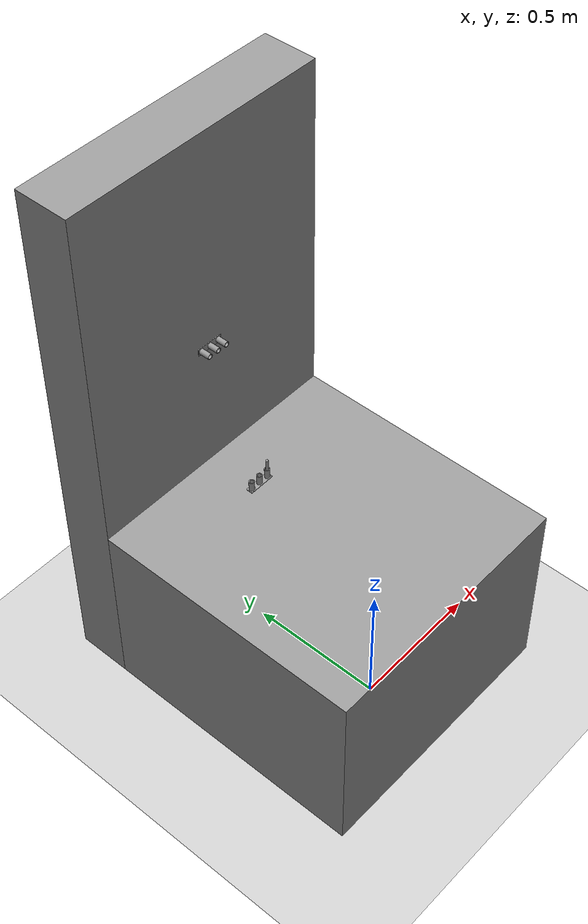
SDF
<?xml version="1.0" ?>
<sdf version="1.4">
  <world name="default">
    <include>
      <uri>model://ground_plane</uri>
    </include>
    <include>
      <uri>model://sun</uri>
      <pose>-10 10 0 0 0 0</pose>

    </include>
    <include>
      <uri>model://peg_holder</uri>
      <name>horizontal_peg_holder</name>
      <pose>0 0.5 0.7 0 0 0</pose>
    </include>

    <include>
      <uri>model://peg_holder</uri>
      <name>wall_peg_holder</name>
      <pose>0 0.7 1.2 1.57079632679 0 0</pose>
    </include>

    <include>
      <uri>model://workbench</uri>
      <name>workbench</name>
      <pose>0 0.5 0 0 0 1.57079632679</pose>
    </include>

    <include>
      <uri>model://custom_peg</uri>
      <name>peg_1</name>
      <name>workbench</name>
      <pose>0.0375 0.5 0.73 0 0 0</pose>
    </include>
  </world>
</sdf>

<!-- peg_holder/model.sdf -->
<sdf version="1.6">
  <model name="peg_holder">
    <static>true</static>
    <link name="link_right">
      <pose frame="">-0.0375 0 0 0 -0 0</pose>
    </link>
    <link name="link_left">
      <pose frame="">0.0375 0 0 0 -0 0</pose>
    </link>
    <link name="link_central">
      <pose frame="">0 0 0 0 -0 0</pose>
      <inertial>
        <mass>100</mass>
        <inertia>
          <ixx>0.166667</ixx>
          <ixy>0</ixy>
          <ixz>0</ixz>
          <iyy>0.166667</iyy>
          <iyz>0</iyz>
          <izz>0.166667</izz>
        </inertia>
      </inertial>
      <self_collide>0</self_collide>
      <kinematic>0</kinematic>
      <visual name="visual">
        <pose frame="">0 0 0 0 -0 0</pose>
        <geometry>
          <mesh>
            <uri>model://peg_holder/meshes/peg_holder.stl</uri>
            <scale>1 1 1</scale>
          </mesh>
        </geometry>
        <material>
          <lighting>1</lighting>
          <script>
            <uri>file://media/materials/scripts/gazebo.material</uri>
            <name>Gazebo/Grey</name>
          </script>
          <ambient>0.3 0.3 0.3 1</ambient>
          <diffuse>0.7 0.7 0.7 1</diffuse>
          <specular>0.01 0.01 0.01 1</specular>
          <emissive>0 0 0 1</emissive>
        </material>
        <cast_shadows>1</cast_shadows>
        <transparency>0</transparency>
      </visual>
      <collision name="collision">
        <laser_retro>0</laser_retro>
        <max_contacts>10</max_contacts>
        <pose frame="">0 0 0 0 -0 0</pose>
        <geometry>
          <mesh>
            <uri>model://peg_holder/meshes/peg_holder.stl</uri>
          </mesh>
        </geometry>
        <surface>
          <friction>
            <ode>
              <mu>1</mu>
              <mu2>1</mu2>
              <fdir1>0 0 0</fdir1>
              <slip1>0</slip1>
              <slip2>0</slip2>
            </ode>
            <torsional>
              <coefficient>1</coefficient>
              <patch_radius>0</patch_radius>
              <surface_radius>0</surface_radius>
              <use_patch_radius>1</use_patch_radius>
              <ode>
                <slip>0</slip>
              </ode>
            </torsional>
          </friction>
          <bounce>
            <restitution_coefficient>0</restitution_coefficient>
            <threshold>1e+06</threshold>
          </bounce>
          <contact>
            <collide_without_contact>0</collide_without_contact>
            <collide_without_contact_bitmask>1</collide_without_contact_bitmask>
            <collide_bitmask>1</collide_bitmask>
            <ode>
              <soft_cfm>0</soft_cfm>
              <soft_erp>0.2</soft_erp>
              <kp>1e+13</kp>
              <kd>1</kd>
              <max_vel>0.01</max_vel>
              <min_depth>0</min_depth>
            </ode>
            <bullet>
              <split_impulse>1</split_impulse>
              <split_impulse_penetration_threshold>-0.01</split_impulse_penetration_threshold>
              <soft_cfm>0</soft_cfm>
              <soft_erp>0.2</soft_erp>
              <kp>1e+13</kp>
              <kd>1</kd>
            </bullet>
          </contact>
        </surface>
      </collision>
    </link>
    <static>0</static>
    <allow_auto_disable>1</allow_auto_disable>
  </model>
</sdf>

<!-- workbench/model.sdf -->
<sdf version='1.6'>
  <model name='workbench'>
    <link name='link_1'>
      <pose frame=''>-0.3 0 0 0 -0 0</pose>
      <inertial>
        <mass>1</mass>
        <inertia>
          <ixx>0.166667</ixx>
          <ixy>0</ixy>
          <ixz>0</ixz>
          <iyy>0.166667</iyy>
          <iyz>0</iyz>
          <izz>0.166667</izz>
        </inertia>
        <pose frame=''>0 0 0 0 -0 0</pose>
      </inertial>
      <gravity>1</gravity>
      <self_collide>0</self_collide>
      <kinematic>0</kinematic>
      <visual name='visual'>
        <pose frame=''>0 0 0.35 0 -0 0</pose>
        <geometry>
          <box>
            <size>1 1 0.7</size>
          </box>
        </geometry>
        <material>
          <lighting>1</lighting>
          <script>
            <uri>file://media/materials/scripts/gazebo.material</uri>
            <name>Gazebo/Grey</name>
          </script>
          <ambient>0.3 0.3 0.3 1</ambient>
          <diffuse>0.7 0.7 0.7 1</diffuse>
          <specular>0.01 0.01 0.01 1</specular>
          <emissive>0 0 0 1</emissive>
          <shader type='vertex'>
            <normal_map>__default__</normal_map>
          </shader>
        </material>
        <cast_shadows>1</cast_shadows>
        <transparency>0</transparency>
      </visual>
      <collision name='collision'>
        <laser_retro>0</laser_retro>
        <max_contacts>10</max_contacts>
        <pose frame=''>0 0 0.35 0 -0 0</pose>
        <geometry>
          <box>
            <size>1 1 0.7</size>
          </box>
        </geometry>
        <surface>
          <friction>
            <ode>
              <mu>1</mu>
              <mu2>1</mu2>
              <fdir1>0 0 0</fdir1>
              <slip1>0</slip1>
              <slip2>0</slip2>
            </ode>
            <torsional>
              <coefficient>1</coefficient>
              <patch_radius>0</patch_radius>
              <surface_radius>0</surface_radius>
              <use_patch_radius>1</use_patch_radius>
              <ode>
                <slip>0</slip>
              </ode>
            </torsional>
          </friction>
          <bounce>
            <restitution_coefficient>0</restitution_coefficient>
            <threshold>1e+06</threshold>
          </bounce>
          <contact>
            <collide_without_contact>0</collide_without_contact>
            <collide_without_contact_bitmask>1</collide_without_contact_bitmask>
            <collide_bitmask>1</collide_bitmask>
            <ode>
              <soft_cfm>0</soft_cfm>
              <soft_erp>0.2</soft_erp>
              <kp>1e+13</kp>
              <kd>1</kd>
              <max_vel>0.01</max_vel>
              <min_depth>0</min_depth>
            </ode>
            <bullet>
              <split_impulse>1</split_impulse>
              <split_impulse_penetration_threshold>-0.01</split_impulse_penetration_threshold>
              <soft_cfm>0</soft_cfm>
              <soft_erp>0.2</soft_erp>
              <kp>1e+13</kp>
              <kd>1</kd>
            </bullet>
          </contact>
        </surface>
      </collision>
    </link>
    <link name='link_2'>
      <pose frame=''>0.3 0 0 0 -0 0</pose>
      <inertial>
        <mass>1</mass>
        <inertia>
          <ixx>0.166667</ixx>
          <ixy>0</ixy>
          <ixz>0</ixz>
          <iyy>0.166667</iyy>
          <iyz>0</iyz>
          <izz>0.166667</izz>
        </inertia>
        <pose frame=''>0 0 0 0 -0 0</pose>
      </inertial>
      <gravity>1</gravity>
      <self_collide>0</self_collide>
      <kinematic>0</kinematic>
      <visual name='visual'>
        <pose frame=''>0 0 1 0 -0 0</pose>
        <geometry>
          <box>
            <size>0.2 1 2</size>
          </box>
        </geometry>
        <material>
          <lighting>1</lighting>
          <script>
            <uri>file://media/materials/scripts/gazebo.material</uri>
            <name>Gazebo/Grey</name>
          </script>
          <ambient>0.3 0.3 0.3 1</ambient>
          <diffuse>0.7 0.7 0.7 1</diffuse>
          <specular>0.01 0.01 0.01 1</specular>
          <emissive>0 0 0 1</emissive>
          <shader type='vertex'>
            <normal_map>__default__</normal_map>
          </shader>
        </material>
        <cast_shadows>1</cast_shadows>
        <transparency>0</transparency>
      </visual>
      <collision name='collision'>
        <laser_retro>0</laser_retro>
        <max_contacts>10</max_contacts>
        <pose frame=''>0 0 1 0 -0 0</pose>
        <geometry>
          <box>
            <size>0.2 1 2</size>
          </box>
        </geometry>
        <surface>
          <friction>
            <ode>
              <mu>1</mu>
              <mu2>1</mu2>
              <fdir1>0 0 0</fdir1>
              <slip1>0</slip1>
              <slip2>0</slip2>
            </ode>
            <torsional>
              <coefficient>1</coefficient>
              <patch_radius>0</patch_radius>
              <surface_radius>0</surface_radius>
              <use_patch_radius>1</use_patch_radius>
              <ode>
                <slip>0</slip>
              </ode>
            </torsional>
          </friction>
          <bounce>
            <restitution_coefficient>0</restitution_coefficient>
            <threshold>1e+06</threshold>
          </bounce>
          <contact>
            <collide_without_contact>0</collide_without_contact>
            <collide_without_contact_bitmask>1</collide_without_contact_bitmask>
            <collide_bitmask>1</collide_bitmask>
            <ode>
              <soft_cfm>0</soft_cfm>
              <soft_erp>0.2</soft_erp>
              <kp>1e+13</kp>
              <kd>1</kd>
              <max_vel>0.01</max_vel>
              <min_depth>0</min_depth>
            </ode>
            <bullet>
              <split_impulse>1</split_impulse>
              <split_impulse_penetration_threshold>-0.01</split_impulse_penetration_threshold>
              <soft_cfm>0</soft_cfm>
              <soft_erp>0.2</soft_erp>
              <kp>1e+13</kp>
              <kd>1</kd>
            </bullet>
          </contact>
        </surface>
      </collision>
    </link>
    <static>true</static>
    <allow_auto_disable>1</allow_auto_disable>
  </model>
</sdf>

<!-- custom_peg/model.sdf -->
<sdf version='1.6'>
  <model name='custom_peg'>
    <link name='link_0'>
      <pose frame=''>0 0 0 0 -0 0</pose>
      <inertial>
        <mass>1</mass>
        <inertia>
          <ixx>0.145833</ixx>
          <ixy>0</ixy>
          <ixz>0</ixz>
          <iyy>0.145833</iyy>
          <iyz>0</iyz>
          <izz>0.125</izz>
        </inertia>
        <pose frame=''>0 0 0 0 -0 0</pose>
      </inertial>
      <gravity>1</gravity>
      <self_collide>0</self_collide>
      <kinematic>0</kinematic>
      <visual name='visual'>
        <pose frame=''>0 0 0 0 -0 0</pose>
        <geometry>
          <cylinder>
            <radius>0.005</radius>
            <length>0.1</length>
          </cylinder>
        </geometry>
        <material>
          <lighting>1</lighting>
          <script>
            <uri>file://media/materials/scripts/gazebo.material</uri>
            <name>Gazebo/Grey</name>
          </script>
          <ambient>0.3 0.3 0.3 1</ambient>
          <diffuse>0.7 0.7 0.7 1</diffuse>
          <specular>0.01 0.01 0.01 1</specular>
          <emissive>0 0 0 1</emissive>
          <shader type='vertex'>
            <normal_map>__default__</normal_map>
          </shader>
        </material>
        <cast_shadows>1</cast_shadows>
        <transparency>0</transparency>
      </visual>

      <collision name='collision'>
        <laser_retro>0</laser_retro>
        <max_contacts>10</max_contacts>
        <pose frame=''>0 0 0 0 -0 0</pose>
        <geometry>
          <cylinder>
            <radius>0.005</radius>
            <length>0.1</length>
          </cylinder>
        </geometry>
        <surface>
          <friction>
            <friction>
              <ode>
                <mu>300.0</mu>
                <mu2>300.0</mu2>
              </ode>
            </friction>
            <torsional>
              <coefficient>1.0</coefficient>
              <surface_radius>0.5</surface_radius>
              <use_patch_radius>false</use_patch_radius>
            </torsional>
          </friction>
          <bounce>
            <restitution_coefficient>0</restitution_coefficient>
            <threshold>1e+06</threshold>
          </bounce>
          <contact>
            <collide_without_contact>0</collide_without_contact>
            <collide_without_contact_bitmask>1</collide_without_contact_bitmask>
            <collide_bitmask>1</collide_bitmask>
            <ode>
              <soft_cfm>0</soft_cfm>
              <soft_erp>0.2</soft_erp>
              <kp>1e+13</kp>
              <kd>1</kd>
              <max_vel>0.01</max_vel>
              <min_depth>0</min_depth>
            </ode>
            <bullet>
              <split_impulse>1</split_impulse>
              <split_impulse_penetration_threshold>-0.01</split_impulse_penetration_threshold>
              <soft_cfm>0</soft_cfm>
              <soft_erp>0.2</soft_erp>
              <kp>1e+13</kp>
              <kd>1</kd>
            </bullet>
          </contact>
        </surface>
      </collision>
    </link>
    <static>0</static>
    <allow_auto_disable>1</allow_auto_disable>
  </model>
</sdf>
